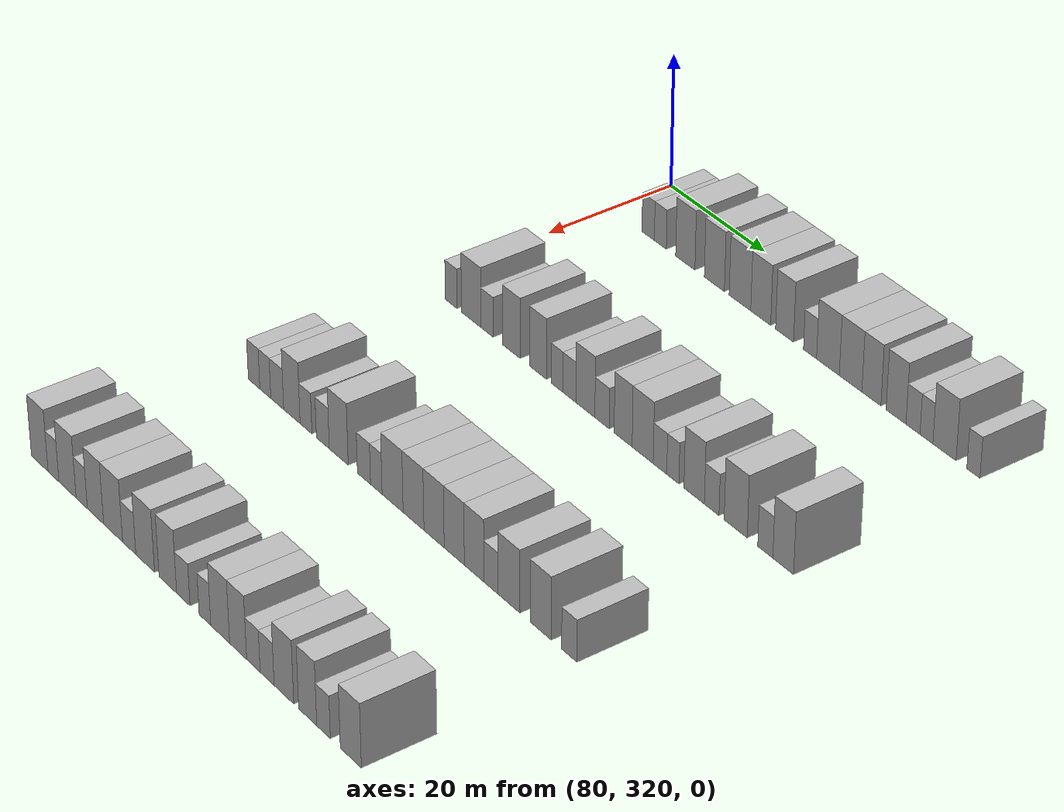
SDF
<sdf version="1.6">
 <world name="default">
  <model name="building_650">
   <static>1</static>
   <pose>85.0000 328.1421 0 0.000000 0.000000 0.000000</pose>
   <link name="link">
    <pose>0 0 3.00 0 0 0</pose>
    <collision name="collision"><geometry><box><size>10.0000 2.6884 6.0000</size></box></geometry></collision>
    <visual name="visual">
     <cast_shadows>0</cast_shadows>
     <geometry><box><size>10.0000 2.6884 6.0000</size></box></geometry>
     <material>
      <script>
       <uri>model://HANNAS_wall/materials/scripts</uri>
       <uri>model://HANNAS_wall/materials/textures</uri>
       <name>vrc/HANNAS_wall</name>
      </script>
     </material>
    </visual>
   </link>
  </model>
  <model name="building_651">
   <static>1</static>
   <pose>85.0000 330.7794 0 0.000000 0.000000 0.000000</pose>
   <link name="link">
    <pose>0 0 3.00 0 0 0</pose>
    <collision name="collision"><geometry><box><size>10.0000 2.5862 6.0000</size></box></geometry></collision>
    <visual name="visual">
     <cast_shadows>0</cast_shadows>
     <geometry><box><size>10.0000 2.5862 6.0000</size></box></geometry>
     <material>
      <script>
       <uri>model://HANNAS_wall/materials/scripts</uri>
       <uri>model://HANNAS_wall/materials/textures</uri>
       <name>vrc/HANNAS_wall</name>
      </script>
     </material>
    </visual>
   </link>
  </model>
  <model name="building_652">
   <static>1</static>
   <pose>85.0000 336.1209 0 0.000000 0.000000 0.000000</pose>
   <link name="link">
    <pose>0 0 4.50 0 0 0</pose>
    <collision name="collision"><geometry><box><size>10.0000 4.0966 9.0000</size></box></geometry></collision>
    <visual name="visual">
     <cast_shadows>0</cast_shadows>
     <geometry><box><size>10.0000 4.0966 9.0000</size></box></geometry>
     <material>
      <script>
       <uri>model://HANNAS_wall/materials/scripts</uri>
       <uri>model://HANNAS_wall/materials/textures</uri>
       <name>vrc/HANNAS_wall</name>
      </script>
     </material>
    </visual>
   </link>
  </model>
  <model name="building_653">
   <static>1</static>
   <pose>85.0000 342.2652 0 0.000000 0.000000 0.000000</pose>
   <link name="link">
    <pose>0 0 4.50 0 0 0</pose>
    <collision name="collision"><geometry><box><size>10.0000 4.1920 9.0000</size></box></geometry></collision>
    <visual name="visual">
     <cast_shadows>0</cast_shadows>
     <geometry><box><size>10.0000 4.1920 9.0000</size></box></geometry>
     <material>
      <script>
       <uri>model://HANNAS_wall/materials/scripts</uri>
       <uri>model://HANNAS_wall/materials/textures</uri>
       <name>vrc/HANNAS_wall</name>
      </script>
     </material>
    </visual>
   </link>
  </model>
  <model name="building_654">
   <static>1</static>
   <pose>85.0000 347.5950 0 0.000000 0.000000 0.000000</pose>
   <link name="link">
    <pose>0 0 4.50 0 0 0</pose>
    <collision name="collision"><geometry><box><size>10.0000 4.4675 9.0000</size></box></geometry></collision>
    <visual name="visual">
     <cast_shadows>0</cast_shadows>
     <geometry><box><size>10.0000 4.4675 9.0000</size></box></geometry>
     <material>
      <script>
       <uri>model://HANNAS_wall/materials/scripts</uri>
       <uri>model://HANNAS_wall/materials/textures</uri>
       <name>vrc/HANNAS_wall</name>
      </script>
     </material>
    </visual>
   </link>
  </model>
  <model name="building_655">
   <static>1</static>
   <pose>85.0000 351.8679 0 0.000000 0.000000 0.000000</pose>
   <link name="link">
    <pose>0 0 4.50 0 0 0</pose>
    <collision name="collision"><geometry><box><size>10.0000 4.0784 9.0000</size></box></geometry></collision>
    <visual name="visual">
     <cast_shadows>0</cast_shadows>
     <geometry><box><size>10.0000 4.0784 9.0000</size></box></geometry>
     <material>
      <script>
       <uri>model://HANNAS_wall/materials/scripts</uri>
       <uri>model://HANNAS_wall/materials/textures</uri>
       <name>vrc/HANNAS_wall</name>
      </script>
     </material>
    </visual>
   </link>
  </model>
  <model name="building_656">
   <static>1</static>
   <pose>85.0000 356.7213 0 0.000000 0.000000 0.000000</pose>
   <link name="link">
    <pose>0 0 4.50 0 0 0</pose>
    <collision name="collision"><geometry><box><size>10.0000 3.6284 9.0000</size></box></geometry></collision>
    <visual name="visual">
     <cast_shadows>0</cast_shadows>
     <geometry><box><size>10.0000 3.6284 9.0000</size></box></geometry>
     <material>
      <script>
       <uri>model://HANNAS_wall/materials/scripts</uri>
       <uri>model://HANNAS_wall/materials/textures</uri>
       <name>vrc/HANNAS_wall</name>
      </script>
     </material>
    </visual>
   </link>
  </model>
  <model name="building_657">
   <static>1</static>
   <pose>85.0000 361.8400 0 0.000000 0.000000 0.000000</pose>
   <link name="link">
    <pose>0 0 3.00 0 0 0</pose>
    <collision name="collision"><geometry><box><size>10.0000 2.6089 6.0000</size></box></geometry></collision>
    <visual name="visual">
     <cast_shadows>0</cast_shadows>
     <geometry><box><size>10.0000 2.6089 6.0000</size></box></geometry>
     <material>
      <script>
       <uri>model://HANNAS_wall/materials/scripts</uri>
       <uri>model://HANNAS_wall/materials/textures</uri>
       <name>vrc/HANNAS_wall</name>
      </script>
     </material>
    </visual>
   </link>
  </model>
  <model name="building_658">
   <static>1</static>
   <pose>85.0000 365.3911 0 0.000000 0.000000 0.000000</pose>
   <link name="link">
    <pose>0 0 4.50 0 0 0</pose>
    <collision name="collision"><geometry><box><size>10.0000 4.4933 9.0000</size></box></geometry></collision>
    <visual name="visual">
     <cast_shadows>0</cast_shadows>
     <geometry><box><size>10.0000 4.4933 9.0000</size></box></geometry>
     <material>
      <script>
       <uri>model://HANNAS_wall/materials/scripts</uri>
       <uri>model://HANNAS_wall/materials/textures</uri>
       <name>vrc/HANNAS_wall</name>
      </script>
     </material>
    </visual>
   </link>
  </model>
  <model name="building_659">
   <static>1</static>
   <pose>85.0000 369.8446 0 0.000000 0.000000 0.000000</pose>
   <link name="link">
    <pose>0 0 4.50 0 0 0</pose>
    <collision name="collision"><geometry><box><size>10.0000 4.4137 9.0000</size></box></geometry></collision>
    <visual name="visual">
     <cast_shadows>0</cast_shadows>
     <geometry><box><size>10.0000 4.4137 9.0000</size></box></geometry>
     <material>
      <script>
       <uri>model://HANNAS_wall/materials/scripts</uri>
       <uri>model://HANNAS_wall/materials/textures</uri>
       <name>vrc/HANNAS_wall</name>
      </script>
     </material>
    </visual>
   </link>
  </model>
  <model name="building_660">
   <static>1</static>
   <pose>85.0000 373.8923 0 0.000000 0.000000 0.000000</pose>
   <link name="link">
    <pose>0 0 4.50 0 0 0</pose>
    <collision name="collision"><geometry><box><size>10.0000 3.6818 9.0000</size></box></geometry></collision>
    <visual name="visual">
     <cast_shadows>0</cast_shadows>
     <geometry><box><size>10.0000 3.6818 9.0000</size></box></geometry>
     <material>
      <script>
       <uri>model://HANNAS_wall/materials/scripts</uri>
       <uri>model://HANNAS_wall/materials/textures</uri>
       <name>vrc/HANNAS_wall</name>
      </script>
     </material>
    </visual>
   </link>
  </model>
  <model name="building_661">
   <static>1</static>
   <pose>85.0000 378.6271 0 0.000000 0.000000 0.000000</pose>
   <link name="link">
    <pose>0 0 4.50 0 0 0</pose>
    <collision name="collision"><geometry><box><size>10.0000 3.7879 9.0000</size></box></geometry></collision>
    <visual name="visual">
     <cast_shadows>0</cast_shadows>
     <geometry><box><size>10.0000 3.7879 9.0000</size></box></geometry>
     <material>
      <script>
       <uri>model://HANNAS_wall/materials/scripts</uri>
       <uri>model://HANNAS_wall/materials/textures</uri>
       <name>vrc/HANNAS_wall</name>
      </script>
     </material>
    </visual>
   </link>
  </model>
  <model name="building_662">
   <static>1</static>
   <pose>85.0000 381.8468 0 0.000000 0.000000 0.000000</pose>
   <link name="link">
    <pose>0 0 3.00 0 0 0</pose>
    <collision name="collision"><geometry><box><size>10.0000 2.6515 6.0000</size></box></geometry></collision>
    <visual name="visual">
     <cast_shadows>0</cast_shadows>
     <geometry><box><size>10.0000 2.6515 6.0000</size></box></geometry>
     <material>
      <script>
       <uri>model://HANNAS_wall/materials/scripts</uri>
       <uri>model://HANNAS_wall/materials/textures</uri>
       <name>vrc/HANNAS_wall</name>
      </script>
     </material>
    </visual>
   </link>
  </model>
  <model name="building_663">
   <static>1</static>
   <pose>85.0000 384.3924 0 0.000000 0.000000 0.000000</pose>
   <link name="link">
    <pose>0 0 3.00 0 0 0</pose>
    <collision name="collision"><geometry><box><size>10.0000 2.4397 6.0000</size></box></geometry></collision>
    <visual name="visual">
     <cast_shadows>0</cast_shadows>
     <geometry><box><size>10.0000 2.4397 6.0000</size></box></geometry>
     <material>
      <script>
       <uri>model://HANNAS_wall/materials/scripts</uri>
       <uri>model://HANNAS_wall/materials/textures</uri>
       <name>vrc/HANNAS_wall</name>
      </script>
     </material>
    </visual>
   </link>
  </model>
  <model name="building_664">
   <static>1</static>
   <pose>85.0000 387.7681 0 0.000000 0.000000 0.000000</pose>
   <link name="link">
    <pose>0 0 4.50 0 0 0</pose>
    <collision name="collision"><geometry><box><size>10.0000 4.3117 9.0000</size></box></geometry></collision>
    <visual name="visual">
     <cast_shadows>0</cast_shadows>
     <geometry><box><size>10.0000 4.3117 9.0000</size></box></geometry>
     <material>
      <script>
       <uri>model://HANNAS_wall/materials/scripts</uri>
       <uri>model://HANNAS_wall/materials/textures</uri>
       <name>vrc/HANNAS_wall</name>
      </script>
     </material>
    </visual>
   </link>
  </model>
  <model name="building_665">
   <static>1</static>
   <pose>85.0000 393.1250 0 0.000000 0.000000 0.000000</pose>
   <link name="link">
    <pose>0 0 3.00 0 0 0</pose>
    <collision name="collision"><geometry><box><size>10.0000 2.4022 6.0000</size></box></geometry></collision>
    <visual name="visual">
     <cast_shadows>0</cast_shadows>
     <geometry><box><size>10.0000 2.4022 6.0000</size></box></geometry>
     <material>
      <script>
       <uri>model://HANNAS_wall/materials/scripts</uri>
       <uri>model://HANNAS_wall/materials/textures</uri>
       <name>vrc/HANNAS_wall</name>
      </script>
     </material>
    </visual>
   </link>
  </model>
  <model name="building_885">
   <static>1</static>
   <pose>115.0000 326.4100 0 0.000000 0.000000 0.000000</pose>
   <link name="link">
    <pose>0 0 3.00 0 0 0</pose>
    <collision name="collision"><geometry><box><size>10.0000 2.6355 6.0000</size></box></geometry></collision>
    <visual name="visual">
     <cast_shadows>0</cast_shadows>
     <geometry><box><size>10.0000 2.6355 6.0000</size></box></geometry>
     <material>
      <script>
       <uri>model://HANNAS_wall/materials/scripts</uri>
       <uri>model://HANNAS_wall/materials/textures</uri>
       <name>vrc/HANNAS_wall</name>
      </script>
     </material>
    </visual>
   </link>
  </model>
  <model name="building_886">
   <static>1</static>
   <pose>115.0000 330.8758 0 0.000000 0.000000 0.000000</pose>
   <link name="link">
    <pose>0 0 4.50 0 0 0</pose>
    <collision name="collision"><geometry><box><size>10.0000 4.2961 9.0000</size></box></geometry></collision>
    <visual name="visual">
     <cast_shadows>0</cast_shadows>
     <geometry><box><size>10.0000 4.2961 9.0000</size></box></geometry>
     <material>
      <script>
       <uri>model://HANNAS_wall/materials/scripts</uri>
       <uri>model://HANNAS_wall/materials/textures</uri>
       <name>vrc/HANNAS_wall</name>
      </script>
     </material>
    </visual>
   </link>
  </model>
  <model name="building_887">
   <static>1</static>
   <pose>115.0000 334.3725 0 0.000000 0.000000 0.000000</pose>
   <link name="link">
    <pose>0 0 3.00 0 0 0</pose>
    <collision name="collision"><geometry><box><size>10.0000 2.6972 6.0000</size></box></geometry></collision>
    <visual name="visual">
     <cast_shadows>0</cast_shadows>
     <geometry><box><size>10.0000 2.6972 6.0000</size></box></geometry>
     <material>
      <script>
       <uri>model://HANNAS_wall/materials/scripts</uri>
       <uri>model://HANNAS_wall/materials/textures</uri>
       <name>vrc/HANNAS_wall</name>
      </script>
     </material>
    </visual>
   </link>
  </model>
  <model name="building_888">
   <static>1</static>
   <pose>115.0000 339.6433 0 0.000000 0.000000 0.000000</pose>
   <link name="link">
    <pose>0 0 4.50 0 0 0</pose>
    <collision name="collision"><geometry><box><size>10.0000 3.8444 9.0000</size></box></geometry></collision>
    <visual name="visual">
     <cast_shadows>0</cast_shadows>
     <geometry><box><size>10.0000 3.8444 9.0000</size></box></geometry>
     <material>
      <script>
       <uri>model://HANNAS_wall/materials/scripts</uri>
       <uri>model://HANNAS_wall/materials/textures</uri>
       <name>vrc/HANNAS_wall</name>
      </script>
     </material>
    </visual>
   </link>
  </model>
  <model name="building_889">
   <static>1</static>
   <pose>115.0000 345.3715 0 0.000000 0.000000 0.000000</pose>
   <link name="link">
    <pose>0 0 4.50 0 0 0</pose>
    <collision name="collision"><geometry><box><size>10.0000 3.6120 9.0000</size></box></geometry></collision>
    <visual name="visual">
     <cast_shadows>0</cast_shadows>
     <geometry><box><size>10.0000 3.6120 9.0000</size></box></geometry>
     <material>
      <script>
       <uri>model://HANNAS_wall/materials/scripts</uri>
       <uri>model://HANNAS_wall/materials/textures</uri>
       <name>vrc/HANNAS_wall</name>
      </script>
     </material>
    </visual>
   </link>
  </model>
  <model name="building_890">
   <static>1</static>
   <pose>115.0000 349.4188 0 0.000000 0.000000 0.000000</pose>
   <link name="link">
    <pose>0 0 3.00 0 0 0</pose>
    <collision name="collision"><geometry><box><size>10.0000 2.4825 6.0000</size></box></geometry></collision>
    <visual name="visual">
     <cast_shadows>0</cast_shadows>
     <geometry><box><size>10.0000 2.4825 6.0000</size></box></geometry>
     <material>
      <script>
       <uri>model://HANNAS_wall/materials/scripts</uri>
       <uri>model://HANNAS_wall/materials/textures</uri>
       <name>vrc/HANNAS_wall</name>
      </script>
     </material>
    </visual>
   </link>
  </model>
  <model name="building_891">
   <static>1</static>
   <pose>115.0000 352.0360 0 0.000000 0.000000 0.000000</pose>
   <link name="link">
    <pose>0 0 3.00 0 0 0</pose>
    <collision name="collision"><geometry><box><size>10.0000 2.7521 6.0000</size></box></geometry></collision>
    <visual name="visual">
     <cast_shadows>0</cast_shadows>
     <geometry><box><size>10.0000 2.7521 6.0000</size></box></geometry>
     <material>
      <script>
       <uri>model://HANNAS_wall/materials/scripts</uri>
       <uri>model://HANNAS_wall/materials/textures</uri>
       <name>vrc/HANNAS_wall</name>
      </script>
     </material>
    </visual>
   </link>
  </model>
  <model name="building_892">
   <static>1</static>
   <pose>115.0000 355.3630 0 0.000000 0.000000 0.000000</pose>
   <link name="link">
    <pose>0 0 4.50 0 0 0</pose>
    <collision name="collision"><geometry><box><size>10.0000 3.9019 9.0000</size></box></geometry></collision>
    <visual name="visual">
     <cast_shadows>0</cast_shadows>
     <geometry><box><size>10.0000 3.9019 9.0000</size></box></geometry>
     <material>
      <script>
       <uri>model://HANNAS_wall/materials/scripts</uri>
       <uri>model://HANNAS_wall/materials/textures</uri>
       <name>vrc/HANNAS_wall</name>
      </script>
     </material>
    </visual>
   </link>
  </model>
  <model name="building_893">
   <static>1</static>
   <pose>115.0000 358.7954 0 0.000000 0.000000 0.000000</pose>
   <link name="link">
    <pose>0 0 3.00 0 0 0</pose>
    <collision name="collision"><geometry><box><size>10.0000 2.9629 6.0000</size></box></geometry></collision>
    <visual name="visual">
     <cast_shadows>0</cast_shadows>
     <geometry><box><size>10.0000 2.9629 6.0000</size></box></geometry>
     <material>
      <script>
       <uri>model://HANNAS_wall/materials/scripts</uri>
       <uri>model://HANNAS_wall/materials/textures</uri>
       <name>vrc/HANNAS_wall</name>
      </script>
     </material>
    </visual>
   </link>
  </model>
  <model name="building_894">
   <static>1</static>
   <pose>115.0000 363.1026 0 0.000000 0.000000 0.000000</pose>
   <link name="link">
    <pose>0 0 4.50 0 0 0</pose>
    <collision name="collision"><geometry><box><size>10.0000 3.6515 9.0000</size></box></geometry></collision>
    <visual name="visual">
     <cast_shadows>0</cast_shadows>
     <geometry><box><size>10.0000 3.6515 9.0000</size></box></geometry>
     <material>
      <script>
       <uri>model://HANNAS_wall/materials/scripts</uri>
       <uri>model://HANNAS_wall/materials/textures</uri>
       <name>vrc/HANNAS_wall</name>
      </script>
     </material>
    </visual>
   </link>
  </model>
  <model name="building_895">
   <static>1</static>
   <pose>115.0000 367.0484 0 0.000000 0.000000 0.000000</pose>
   <link name="link">
    <pose>0 0 4.50 0 0 0</pose>
    <collision name="collision"><geometry><box><size>10.0000 4.2400 9.0000</size></box></geometry></collision>
    <visual name="visual">
     <cast_shadows>0</cast_shadows>
     <geometry><box><size>10.0000 4.2400 9.0000</size></box></geometry>
     <material>
      <script>
       <uri>model://HANNAS_wall/materials/scripts</uri>
       <uri>model://HANNAS_wall/materials/textures</uri>
       <name>vrc/HANNAS_wall</name>
      </script>
     </material>
    </visual>
   </link>
  </model>
  <model name="building_896">
   <static>1</static>
   <pose>115.0000 370.5228 0 0.000000 0.000000 0.000000</pose>
   <link name="link">
    <pose>0 0 3.00 0 0 0</pose>
    <collision name="collision"><geometry><box><size>10.0000 2.7088 6.0000</size></box></geometry></collision>
    <visual name="visual">
     <cast_shadows>0</cast_shadows>
     <geometry><box><size>10.0000 2.7088 6.0000</size></box></geometry>
     <material>
      <script>
       <uri>model://HANNAS_wall/materials/scripts</uri>
       <uri>model://HANNAS_wall/materials/textures</uri>
       <name>vrc/HANNAS_wall</name>
      </script>
     </material>
    </visual>
   </link>
  </model>
  <model name="building_897">
   <static>1</static>
   <pose>115.0000 373.0802 0 0.000000 0.000000 0.000000</pose>
   <link name="link">
    <pose>0 0 3.00 0 0 0</pose>
    <collision name="collision"><geometry><box><size>10.0000 2.4058 6.0000</size></box></geometry></collision>
    <visual name="visual">
     <cast_shadows>0</cast_shadows>
     <geometry><box><size>10.0000 2.4058 6.0000</size></box></geometry>
     <material>
      <script>
       <uri>model://HANNAS_wall/materials/scripts</uri>
       <uri>model://HANNAS_wall/materials/textures</uri>
       <name>vrc/HANNAS_wall</name>
      </script>
     </material>
    </visual>
   </link>
  </model>
  <model name="building_898">
   <static>1</static>
   <pose>115.0000 377.2792 0 0.000000 0.000000 0.000000</pose>
   <link name="link">
    <pose>0 0 4.50 0 0 0</pose>
    <collision name="collision"><geometry><box><size>10.0000 3.9923 9.0000</size></box></geometry></collision>
    <visual name="visual">
     <cast_shadows>0</cast_shadows>
     <geometry><box><size>10.0000 3.9923 9.0000</size></box></geometry>
     <material>
      <script>
       <uri>model://HANNAS_wall/materials/scripts</uri>
       <uri>model://HANNAS_wall/materials/textures</uri>
       <name>vrc/HANNAS_wall</name>
      </script>
     </material>
    </visual>
   </link>
  </model>
  <model name="building_899">
   <static>1</static>
   <pose>115.0000 380.6946 0 0.000000 0.000000 0.000000</pose>
   <link name="link">
    <pose>0 0 3.00 0 0 0</pose>
    <collision name="collision"><geometry><box><size>10.0000 2.8386 6.0000</size></box></geometry></collision>
    <visual name="visual">
     <cast_shadows>0</cast_shadows>
     <geometry><box><size>10.0000 2.8386 6.0000</size></box></geometry>
     <material>
      <script>
       <uri>model://HANNAS_wall/materials/scripts</uri>
       <uri>model://HANNAS_wall/materials/textures</uri>
       <name>vrc/HANNAS_wall</name>
      </script>
     </material>
    </visual>
   </link>
  </model>
  <model name="building_900">
   <static>1</static>
   <pose>115.0000 385.3204 0 0.000000 0.000000 0.000000</pose>
   <link name="link">
    <pose>0 0 4.50 0 0 0</pose>
    <collision name="collision"><geometry><box><size>10.0000 4.4130 9.0000</size></box></geometry></collision>
    <visual name="visual">
     <cast_shadows>0</cast_shadows>
     <geometry><box><size>10.0000 4.4130 9.0000</size></box></geometry>
     <material>
      <script>
       <uri>model://HANNAS_wall/materials/scripts</uri>
       <uri>model://HANNAS_wall/materials/textures</uri>
       <name>vrc/HANNAS_wall</name>
      </script>
     </material>
    </visual>
   </link>
  </model>
  <model name="building_901">
   <static>1</static>
   <pose>115.0000 390.9501 0 0.000000 0.000000 0.000000</pose>
   <link name="link">
    <pose>0 0 3.00 0 0 0</pose>
    <collision name="collision"><geometry><box><size>10.0000 2.8464 6.0000</size></box></geometry></collision>
    <visual name="visual">
     <cast_shadows>0</cast_shadows>
     <geometry><box><size>10.0000 2.8464 6.0000</size></box></geometry>
     <material>
      <script>
       <uri>model://HANNAS_wall/materials/scripts</uri>
       <uri>model://HANNAS_wall/materials/textures</uri>
       <name>vrc/HANNAS_wall</name>
      </script>
     </material>
    </visual>
   </link>
  </model>
  <model name="building_902">
   <static>1</static>
   <pose>115.0000 394.3172 0 0.000000 0.000000 0.000000</pose>
   <link name="link">
    <pose>0 0 4.50 0 0 0</pose>
    <collision name="collision"><geometry><box><size>10.0000 3.8877 9.0000</size></box></geometry></collision>
    <visual name="visual">
     <cast_shadows>0</cast_shadows>
     <geometry><box><size>10.0000 3.8877 9.0000</size></box></geometry>
     <material>
      <script>
       <uri>model://HANNAS_wall/materials/scripts</uri>
       <uri>model://HANNAS_wall/materials/textures</uri>
       <name>vrc/HANNAS_wall</name>
      </script>
     </material>
    </visual>
   </link>
  </model>
  <model name="building_1102">
   <static>1</static>
   <pose>145.0000 326.9883 0 0.000000 0.000000 0.000000</pose>
   <link name="link">
    <pose>0 0 3.00 0 0 0</pose>
    <collision name="collision"><geometry><box><size>10.0000 2.6435 6.0000</size></box></geometry></collision>
    <visual name="visual">
     <cast_shadows>0</cast_shadows>
     <geometry><box><size>10.0000 2.6435 6.0000</size></box></geometry>
     <material>
      <script>
       <uri>model://HANNAS_wall/materials/scripts</uri>
       <uri>model://HANNAS_wall/materials/textures</uri>
       <name>vrc/HANNAS_wall</name>
      </script>
     </material>
    </visual>
   </link>
  </model>
  <model name="building_1103">
   <static>1</static>
   <pose>145.0000 329.5619 0 0.000000 0.000000 0.000000</pose>
   <link name="link">
    <pose>0 0 3.00 0 0 0</pose>
    <collision name="collision"><geometry><box><size>10.0000 2.5037 6.0000</size></box></geometry></collision>
    <visual name="visual">
     <cast_shadows>0</cast_shadows>
     <geometry><box><size>10.0000 2.5037 6.0000</size></box></geometry>
     <material>
      <script>
       <uri>model://HANNAS_wall/materials/scripts</uri>
       <uri>model://HANNAS_wall/materials/textures</uri>
       <name>vrc/HANNAS_wall</name>
      </script>
     </material>
    </visual>
   </link>
  </model>
  <model name="building_1104">
   <static>1</static>
   <pose>145.0000 332.2792 0 0.000000 0.000000 0.000000</pose>
   <link name="link">
    <pose>0 0 3.00 0 0 0</pose>
    <collision name="collision"><geometry><box><size>10.0000 2.9310 6.0000</size></box></geometry></collision>
    <visual name="visual">
     <cast_shadows>0</cast_shadows>
     <geometry><box><size>10.0000 2.9310 6.0000</size></box></geometry>
     <material>
      <script>
       <uri>model://HANNAS_wall/materials/scripts</uri>
       <uri>model://HANNAS_wall/materials/textures</uri>
       <name>vrc/HANNAS_wall</name>
      </script>
     </material>
    </visual>
   </link>
  </model>
  <model name="building_1105">
   <static>1</static>
   <pose>145.0000 335.5939 0 0.000000 0.000000 0.000000</pose>
   <link name="link">
    <pose>0 0 4.50 0 0 0</pose>
    <collision name="collision"><geometry><box><size>10.0000 3.6984 9.0000</size></box></geometry></collision>
    <visual name="visual">
     <cast_shadows>0</cast_shadows>
     <geometry><box><size>10.0000 3.6984 9.0000</size></box></geometry>
     <material>
      <script>
       <uri>model://HANNAS_wall/materials/scripts</uri>
       <uri>model://HANNAS_wall/materials/textures</uri>
       <name>vrc/HANNAS_wall</name>
      </script>
     </material>
    </visual>
   </link>
  </model>
  <model name="building_1106">
   <static>1</static>
   <pose>145.0000 338.7638 0 0.000000 0.000000 0.000000</pose>
   <link name="link">
    <pose>0 0 3.00 0 0 0</pose>
    <collision name="collision"><geometry><box><size>10.0000 2.6413 6.0000</size></box></geometry></collision>
    <visual name="visual">
     <cast_shadows>0</cast_shadows>
     <geometry><box><size>10.0000 2.6413 6.0000</size></box></geometry>
     <material>
      <script>
       <uri>model://HANNAS_wall/materials/scripts</uri>
       <uri>model://HANNAS_wall/materials/textures</uri>
       <name>vrc/HANNAS_wall</name>
      </script>
     </material>
    </visual>
   </link>
  </model>
  <model name="building_1107">
   <static>1</static>
   <pose>145.0000 342.5074 0 0.000000 0.000000 0.000000</pose>
   <link name="link">
    <pose>0 0 3.00 0 0 0</pose>
    <collision name="collision"><geometry><box><size>10.0000 2.8461 6.0000</size></box></geometry></collision>
    <visual name="visual">
     <cast_shadows>0</cast_shadows>
     <geometry><box><size>10.0000 2.8461 6.0000</size></box></geometry>
     <material>
      <script>
       <uri>model://HANNAS_wall/materials/scripts</uri>
       <uri>model://HANNAS_wall/materials/textures</uri>
       <name>vrc/HANNAS_wall</name>
      </script>
     </material>
    </visual>
   </link>
  </model>
  <model name="building_1108">
   <static>1</static>
   <pose>145.0000 346.0039 0 0.000000 0.000000 0.000000</pose>
   <link name="link">
    <pose>0 0 4.50 0 0 0</pose>
    <collision name="collision"><geometry><box><size>10.0000 4.1467 9.0000</size></box></geometry></collision>
    <visual name="visual">
     <cast_shadows>0</cast_shadows>
     <geometry><box><size>10.0000 4.1467 9.0000</size></box></geometry>
     <material>
      <script>
       <uri>model://HANNAS_wall/materials/scripts</uri>
       <uri>model://HANNAS_wall/materials/textures</uri>
       <name>vrc/HANNAS_wall</name>
      </script>
     </material>
    </visual>
   </link>
  </model>
  <model name="building_1109">
   <static>1</static>
   <pose>145.0000 351.4931 0 0.000000 0.000000 0.000000</pose>
   <link name="link">
    <pose>0 0 3.00 0 0 0</pose>
    <collision name="collision"><geometry><box><size>10.0000 2.8317 6.0000</size></box></geometry></collision>
    <visual name="visual">
     <cast_shadows>0</cast_shadows>
     <geometry><box><size>10.0000 2.8317 6.0000</size></box></geometry>
     <material>
      <script>
       <uri>model://HANNAS_wall/materials/scripts</uri>
       <uri>model://HANNAS_wall/materials/textures</uri>
       <name>vrc/HANNAS_wall</name>
      </script>
     </material>
    </visual>
   </link>
  </model>
  <model name="building_1110">
   <static>1</static>
   <pose>145.0000 354.1524 0 0.000000 0.000000 0.000000</pose>
   <link name="link">
    <pose>0 0 3.00 0 0 0</pose>
    <collision name="collision"><geometry><box><size>10.0000 2.4868 6.0000</size></box></geometry></collision>
    <visual name="visual">
     <cast_shadows>0</cast_shadows>
     <geometry><box><size>10.0000 2.4868 6.0000</size></box></geometry>
     <material>
      <script>
       <uri>model://HANNAS_wall/materials/scripts</uri>
       <uri>model://HANNAS_wall/materials/textures</uri>
       <name>vrc/HANNAS_wall</name>
      </script>
     </material>
    </visual>
   </link>
  </model>
  <model name="building_1111">
   <static>1</static>
   <pose>145.0000 357.6300 0 0.000000 0.000000 0.000000</pose>
   <link name="link">
    <pose>0 0 4.50 0 0 0</pose>
    <collision name="collision"><geometry><box><size>10.0000 4.4685 9.0000</size></box></geometry></collision>
    <visual name="visual">
     <cast_shadows>0</cast_shadows>
     <geometry><box><size>10.0000 4.4685 9.0000</size></box></geometry>
     <material>
      <script>
       <uri>model://HANNAS_wall/materials/scripts</uri>
       <uri>model://HANNAS_wall/materials/textures</uri>
       <name>vrc/HANNAS_wall</name>
      </script>
     </material>
    </visual>
   </link>
  </model>
  <model name="building_1112">
   <static>1</static>
   <pose>145.0000 362.0543 0 0.000000 0.000000 0.000000</pose>
   <link name="link">
    <pose>0 0 4.50 0 0 0</pose>
    <collision name="collision"><geometry><box><size>10.0000 4.3800 9.0000</size></box></geometry></collision>
    <visual name="visual">
     <cast_shadows>0</cast_shadows>
     <geometry><box><size>10.0000 4.3800 9.0000</size></box></geometry>
     <material>
      <script>
       <uri>model://HANNAS_wall/materials/scripts</uri>
       <uri>model://HANNAS_wall/materials/textures</uri>
       <name>vrc/HANNAS_wall</name>
      </script>
     </material>
    </visual>
   </link>
  </model>
  <model name="building_1113">
   <static>1</static>
   <pose>145.0000 366.3402 0 0.000000 0.000000 0.000000</pose>
   <link name="link">
    <pose>0 0 4.50 0 0 0</pose>
    <collision name="collision"><geometry><box><size>10.0000 4.1919 9.0000</size></box></geometry></collision>
    <visual name="visual">
     <cast_shadows>0</cast_shadows>
     <geometry><box><size>10.0000 4.1919 9.0000</size></box></geometry>
     <material>
      <script>
       <uri>model://HANNAS_wall/materials/scripts</uri>
       <uri>model://HANNAS_wall/materials/textures</uri>
       <name>vrc/HANNAS_wall</name>
      </script>
     </material>
    </visual>
   </link>
  </model>
  <model name="building_1114">
   <static>1</static>
   <pose>145.0000 370.5026 0 0.000000 0.000000 0.000000</pose>
   <link name="link">
    <pose>0 0 4.50 0 0 0</pose>
    <collision name="collision"><geometry><box><size>10.0000 4.1329 9.0000</size></box></geometry></collision>
    <visual name="visual">
     <cast_shadows>0</cast_shadows>
     <geometry><box><size>10.0000 4.1329 9.0000</size></box></geometry>
     <material>
      <script>
       <uri>model://HANNAS_wall/materials/scripts</uri>
       <uri>model://HANNAS_wall/materials/textures</uri>
       <name>vrc/HANNAS_wall</name>
      </script>
     </material>
    </visual>
   </link>
  </model>
  <model name="building_1115">
   <static>1</static>
   <pose>145.0000 374.5648 0 0.000000 0.000000 0.000000</pose>
   <link name="link">
    <pose>0 0 4.50 0 0 0</pose>
    <collision name="collision"><geometry><box><size>10.0000 3.9915 9.0000</size></box></geometry></collision>
    <visual name="visual">
     <cast_shadows>0</cast_shadows>
     <geometry><box><size>10.0000 3.9915 9.0000</size></box></geometry>
     <material>
      <script>
       <uri>model://HANNAS_wall/materials/scripts</uri>
       <uri>model://HANNAS_wall/materials/textures</uri>
       <name>vrc/HANNAS_wall</name>
      </script>
     </material>
    </visual>
   </link>
  </model>
  <model name="building_1116">
   <static>1</static>
   <pose>145.0000 377.9505 0 0.000000 0.000000 0.000000</pose>
   <link name="link">
    <pose>0 0 3.00 0 0 0</pose>
    <collision name="collision"><geometry><box><size>10.0000 2.7799 6.0000</size></box></geometry></collision>
    <visual name="visual">
     <cast_shadows>0</cast_shadows>
     <geometry><box><size>10.0000 2.7799 6.0000</size></box></geometry>
     <material>
      <script>
       <uri>model://HANNAS_wall/materials/scripts</uri>
       <uri>model://HANNAS_wall/materials/textures</uri>
       <name>vrc/HANNAS_wall</name>
      </script>
     </material>
    </visual>
   </link>
  </model>
  <model name="building_1117">
   <static>1</static>
   <pose>145.0000 381.5324 0 0.000000 0.000000 0.000000</pose>
   <link name="link">
    <pose>0 0 4.50 0 0 0</pose>
    <collision name="collision"><geometry><box><size>10.0000 4.3839 9.0000</size></box></geometry></collision>
    <visual name="visual">
     <cast_shadows>0</cast_shadows>
     <geometry><box><size>10.0000 4.3839 9.0000</size></box></geometry>
     <material>
      <script>
       <uri>model://HANNAS_wall/materials/scripts</uri>
       <uri>model://HANNAS_wall/materials/textures</uri>
       <name>vrc/HANNAS_wall</name>
      </script>
     </material>
    </visual>
   </link>
  </model>
  <model name="building_1118">
   <static>1</static>
   <pose>145.0000 387.8009 0 0.000000 0.000000 0.000000</pose>
   <link name="link">
    <pose>0 0 4.50 0 0 0</pose>
    <collision name="collision"><geometry><box><size>10.0000 4.1531 9.0000</size></box></geometry></collision>
    <visual name="visual">
     <cast_shadows>0</cast_shadows>
     <geometry><box><size>10.0000 4.1531 9.0000</size></box></geometry>
     <material>
      <script>
       <uri>model://HANNAS_wall/materials/scripts</uri>
       <uri>model://HANNAS_wall/materials/textures</uri>
       <name>vrc/HANNAS_wall</name>
      </script>
     </material>
    </visual>
   </link>
  </model>
  <model name="building_1119">
   <static>1</static>
   <pose>145.0000 393.3515 0 0.000000 0.000000 0.000000</pose>
   <link name="link">
    <pose>0 0 3.00 0 0 0</pose>
    <collision name="collision"><geometry><box><size>10.0000 2.9481 6.0000</size></box></geometry></collision>
    <visual name="visual">
     <cast_shadows>0</cast_shadows>
     <geometry><box><size>10.0000 2.9481 6.0000</size></box></geometry>
     <material>
      <script>
       <uri>model://HANNAS_wall/materials/scripts</uri>
       <uri>model://HANNAS_wall/materials/textures</uri>
       <name>vrc/HANNAS_wall</name>
      </script>
     </material>
    </visual>
   </link>
  </model>
  <model name="building_1329">
   <static>1</static>
   <pose>175.0000 326.2411 0 0.000000 0.000000 0.000000</pose>
   <link name="link">
    <pose>0 0 4.50 0 0 0</pose>
    <collision name="collision"><geometry><box><size>10.0000 3.9765 9.0000</size></box></geometry></collision>
    <visual name="visual">
     <cast_shadows>0</cast_shadows>
     <geometry><box><size>10.0000 3.9765 9.0000</size></box></geometry>
     <material>
      <script>
       <uri>model://HANNAS_wall/materials/scripts</uri>
       <uri>model://HANNAS_wall/materials/textures</uri>
       <name>vrc/HANNAS_wall</name>
      </script>
     </material>
    </visual>
   </link>
  </model>
  <model name="building_1330">
   <static>1</static>
   <pose>175.0000 329.5120 0 0.000000 0.000000 0.000000</pose>
   <link name="link">
    <pose>0 0 3.00 0 0 0</pose>
    <collision name="collision"><geometry><box><size>10.0000 2.5653 6.0000</size></box></geometry></collision>
    <visual name="visual">
     <cast_shadows>0</cast_shadows>
     <geometry><box><size>10.0000 2.5653 6.0000</size></box></geometry>
     <material>
      <script>
       <uri>model://HANNAS_wall/materials/scripts</uri>
       <uri>model://HANNAS_wall/materials/textures</uri>
       <name>vrc/HANNAS_wall</name>
      </script>
     </material>
    </visual>
   </link>
  </model>
  <model name="building_1331">
   <static>1</static>
   <pose>175.0000 332.8213 0 0.000000 0.000000 0.000000</pose>
   <link name="link">
    <pose>0 0 4.50 0 0 0</pose>
    <collision name="collision"><geometry><box><size>10.0000 4.0534 9.0000</size></box></geometry></collision>
    <visual name="visual">
     <cast_shadows>0</cast_shadows>
     <geometry><box><size>10.0000 4.0534 9.0000</size></box></geometry>
     <material>
      <script>
       <uri>model://HANNAS_wall/materials/scripts</uri>
       <uri>model://HANNAS_wall/materials/textures</uri>
       <name>vrc/HANNAS_wall</name>
      </script>
     </material>
    </visual>
   </link>
  </model>
  <model name="building_1332">
   <static>1</static>
   <pose>175.0000 336.1637 0 0.000000 0.000000 0.000000</pose>
   <link name="link">
    <pose>0 0 3.00 0 0 0</pose>
    <collision name="collision"><geometry><box><size>10.0000 2.6314 6.0000</size></box></geometry></collision>
    <visual name="visual">
     <cast_shadows>0</cast_shadows>
     <geometry><box><size>10.0000 2.6314 6.0000</size></box></geometry>
     <material>
      <script>
       <uri>model://HANNAS_wall/materials/scripts</uri>
       <uri>model://HANNAS_wall/materials/textures</uri>
       <name>vrc/HANNAS_wall</name>
      </script>
     </material>
    </visual>
   </link>
  </model>
  <model name="building_1333">
   <static>1</static>
   <pose>175.0000 339.3594 0 0.000000 0.000000 0.000000</pose>
   <link name="link">
    <pose>0 0 4.50 0 0 0</pose>
    <collision name="collision"><geometry><box><size>10.0000 3.7599 9.0000</size></box></geometry></collision>
    <visual name="visual">
     <cast_shadows>0</cast_shadows>
     <geometry><box><size>10.0000 3.7599 9.0000</size></box></geometry>
     <material>
      <script>
       <uri>model://HANNAS_wall/materials/scripts</uri>
       <uri>model://HANNAS_wall/materials/textures</uri>
       <name>vrc/HANNAS_wall</name>
      </script>
     </material>
    </visual>
   </link>
  </model>
  <model name="building_1334">
   <static>1</static>
   <pose>175.0000 343.4102 0 0.000000 0.000000 0.000000</pose>
   <link name="link">
    <pose>0 0 4.50 0 0 0</pose>
    <collision name="collision"><geometry><box><size>10.0000 4.3417 9.0000</size></box></geometry></collision>
    <visual name="visual">
     <cast_shadows>0</cast_shadows>
     <geometry><box><size>10.0000 4.3417 9.0000</size></box></geometry>
     <material>
      <script>
       <uri>model://HANNAS_wall/materials/scripts</uri>
       <uri>model://HANNAS_wall/materials/textures</uri>
       <name>vrc/HANNAS_wall</name>
      </script>
     </material>
    </visual>
   </link>
  </model>
  <model name="building_1335">
   <static>1</static>
   <pose>175.0000 347.0805 0 0.000000 0.000000 0.000000</pose>
   <link name="link">
    <pose>0 0 3.00 0 0 0</pose>
    <collision name="collision"><geometry><box><size>10.0000 2.9990 6.0000</size></box></geometry></collision>
    <visual name="visual">
     <cast_shadows>0</cast_shadows>
     <geometry><box><size>10.0000 2.9990 6.0000</size></box></geometry>
     <material>
      <script>
       <uri>model://HANNAS_wall/materials/scripts</uri>
       <uri>model://HANNAS_wall/materials/textures</uri>
       <name>vrc/HANNAS_wall</name>
      </script>
     </material>
    </visual>
   </link>
  </model>
  <model name="building_1336">
   <static>1</static>
   <pose>175.0000 350.6812 0 0.000000 0.000000 0.000000</pose>
   <link name="link">
    <pose>0 0 4.50 0 0 0</pose>
    <collision name="collision"><geometry><box><size>10.0000 4.2024 9.0000</size></box></geometry></collision>
    <visual name="visual">
     <cast_shadows>0</cast_shadows>
     <geometry><box><size>10.0000 4.2024 9.0000</size></box></geometry>
     <material>
      <script>
       <uri>model://HANNAS_wall/materials/scripts</uri>
       <uri>model://HANNAS_wall/materials/textures</uri>
       <name>vrc/HANNAS_wall</name>
      </script>
     </material>
    </visual>
   </link>
  </model>
  <model name="building_1337">
   <static>1</static>
   <pose>175.0000 355.7232 0 0.000000 0.000000 0.000000</pose>
   <link name="link">
    <pose>0 0 4.50 0 0 0</pose>
    <collision name="collision"><geometry><box><size>10.0000 3.8815 9.0000</size></box></geometry></collision>
    <visual name="visual">
     <cast_shadows>0</cast_shadows>
     <geometry><box><size>10.0000 3.8815 9.0000</size></box></geometry>
     <material>
      <script>
       <uri>model://HANNAS_wall/materials/scripts</uri>
       <uri>model://HANNAS_wall/materials/textures</uri>
       <name>vrc/HANNAS_wall</name>
      </script>
     </material>
    </visual>
   </link>
  </model>
  <model name="building_1338">
   <static>1</static>
   <pose>175.0000 359.1244 0 0.000000 0.000000 0.000000</pose>
   <link name="link">
    <pose>0 0 3.00 0 0 0</pose>
    <collision name="collision"><geometry><box><size>10.0000 2.9210 6.0000</size></box></geometry></collision>
    <visual name="visual">
     <cast_shadows>0</cast_shadows>
     <geometry><box><size>10.0000 2.9210 6.0000</size></box></geometry>
     <material>
      <script>
       <uri>model://HANNAS_wall/materials/scripts</uri>
       <uri>model://HANNAS_wall/materials/textures</uri>
       <name>vrc/HANNAS_wall</name>
      </script>
     </material>
    </visual>
   </link>
  </model>
  <model name="building_1339">
   <static>1</static>
   <pose>175.0000 363.8406 0 0.000000 0.000000 0.000000</pose>
   <link name="link">
    <pose>0 0 3.00 0 0 0</pose>
    <collision name="collision"><geometry><box><size>10.0000 2.5113 6.0000</size></box></geometry></collision>
    <visual name="visual">
     <cast_shadows>0</cast_shadows>
     <geometry><box><size>10.0000 2.5113 6.0000</size></box></geometry>
     <material>
      <script>
       <uri>model://HANNAS_wall/materials/scripts</uri>
       <uri>model://HANNAS_wall/materials/textures</uri>
       <name>vrc/HANNAS_wall</name>
      </script>
     </material>
    </visual>
   </link>
  </model>
  <model name="building_1340">
   <static>1</static>
   <pose>175.0000 367.1114 0 0.000000 0.000000 0.000000</pose>
   <link name="link">
    <pose>0 0 4.50 0 0 0</pose>
    <collision name="collision"><geometry><box><size>10.0000 4.0304 9.0000</size></box></geometry></collision>
    <visual name="visual">
     <cast_shadows>0</cast_shadows>
     <geometry><box><size>10.0000 4.0304 9.0000</size></box></geometry>
     <material>
      <script>
       <uri>model://HANNAS_wall/materials/scripts</uri>
       <uri>model://HANNAS_wall/materials/textures</uri>
       <name>vrc/HANNAS_wall</name>
      </script>
     </material>
    </visual>
   </link>
  </model>
  <model name="building_1341">
   <static>1</static>
   <pose>175.0000 370.9329 0 0.000000 0.000000 0.000000</pose>
   <link name="link">
    <pose>0 0 4.50 0 0 0</pose>
    <collision name="collision"><geometry><box><size>10.0000 3.6127 9.0000</size></box></geometry></collision>
    <visual name="visual">
     <cast_shadows>0</cast_shadows>
     <geometry><box><size>10.0000 3.6127 9.0000</size></box></geometry>
     <material>
      <script>
       <uri>model://HANNAS_wall/materials/scripts</uri>
       <uri>model://HANNAS_wall/materials/textures</uri>
       <name>vrc/HANNAS_wall</name>
      </script>
     </material>
    </visual>
   </link>
  </model>
  <model name="building_1342">
   <static>1</static>
   <pose>175.0000 374.1559 0 0.000000 0.000000 0.000000</pose>
   <link name="link">
    <pose>0 0 3.00 0 0 0</pose>
    <collision name="collision"><geometry><box><size>10.0000 2.8332 6.0000</size></box></geometry></collision>
    <visual name="visual">
     <cast_shadows>0</cast_shadows>
     <geometry><box><size>10.0000 2.8332 6.0000</size></box></geometry>
     <material>
      <script>
       <uri>model://HANNAS_wall/materials/scripts</uri>
       <uri>model://HANNAS_wall/materials/textures</uri>
       <name>vrc/HANNAS_wall</name>
      </script>
     </material>
    </visual>
   </link>
  </model>
  <model name="building_1343">
   <static>1</static>
   <pose>175.0000 377.0259 0 0.000000 0.000000 0.000000</pose>
   <link name="link">
    <pose>0 0 3.00 0 0 0</pose>
    <collision name="collision"><geometry><box><size>10.0000 2.9069 6.0000</size></box></geometry></collision>
    <visual name="visual">
     <cast_shadows>0</cast_shadows>
     <geometry><box><size>10.0000 2.9069 6.0000</size></box></geometry>
     <material>
      <script>
       <uri>model://HANNAS_wall/materials/scripts</uri>
       <uri>model://HANNAS_wall/materials/textures</uri>
       <name>vrc/HANNAS_wall</name>
      </script>
     </material>
    </visual>
   </link>
  </model>
  <model name="building_1344">
   <static>1</static>
   <pose>175.0000 380.5012 0 0.000000 0.000000 0.000000</pose>
   <link name="link">
    <pose>0 0 4.50 0 0 0</pose>
    <collision name="collision"><geometry><box><size>10.0000 4.0437 9.0000</size></box></geometry></collision>
    <visual name="visual">
     <cast_shadows>0</cast_shadows>
     <geometry><box><size>10.0000 4.0437 9.0000</size></box></geometry>
     <material>
      <script>
       <uri>model://HANNAS_wall/materials/scripts</uri>
       <uri>model://HANNAS_wall/materials/textures</uri>
       <name>vrc/HANNAS_wall</name>
      </script>
     </material>
    </visual>
   </link>
  </model>
  <model name="building_1345">
   <static>1</static>
   <pose>175.0000 385.3582 0 0.000000 0.000000 0.000000</pose>
   <link name="link">
    <pose>0 0 4.50 0 0 0</pose>
    <collision name="collision"><geometry><box><size>10.0000 3.6704 9.0000</size></box></geometry></collision>
    <visual name="visual">
     <cast_shadows>0</cast_shadows>
     <geometry><box><size>10.0000 3.6704 9.0000</size></box></geometry>
     <material>
      <script>
       <uri>model://HANNAS_wall/materials/scripts</uri>
       <uri>model://HANNAS_wall/materials/textures</uri>
       <name>vrc/HANNAS_wall</name>
      </script>
     </material>
    </visual>
   </link>
  </model>
  <model name="building_1346">
   <static>1</static>
   <pose>175.0000 388.5620 0 0.000000 0.000000 0.000000</pose>
   <link name="link">
    <pose>0 0 3.00 0 0 0</pose>
    <collision name="collision"><geometry><box><size>10.0000 2.7372 6.0000</size></box></geometry></collision>
    <visual name="visual">
     <cast_shadows>0</cast_shadows>
     <geometry><box><size>10.0000 2.7372 6.0000</size></box></geometry>
     <material>
      <script>
       <uri>model://HANNAS_wall/materials/scripts</uri>
       <uri>model://HANNAS_wall/materials/textures</uri>
       <name>vrc/HANNAS_wall</name>
      </script>
     </material>
    </visual>
   </link>
  </model>
  <model name="building_1347">
   <static>1</static>
   <pose>175.0000 394.0153 0 0.000000 0.000000 0.000000</pose>
   <link name="link">
    <pose>0 0 4.50 0 0 0</pose>
    <collision name="collision"><geometry><box><size>10.0000 4.1694 9.0000</size></box></geometry></collision>
    <visual name="visual">
     <cast_shadows>0</cast_shadows>
     <geometry><box><size>10.0000 4.1694 9.0000</size></box></geometry>
     <material>
      <script>
       <uri>model://HANNAS_wall/materials/scripts</uri>
       <uri>model://HANNAS_wall/materials/textures</uri>
       <name>vrc/HANNAS_wall</name>
      </script>
     </material>
    </visual>
   </link>
  </model>
 </world>
</sdf>
